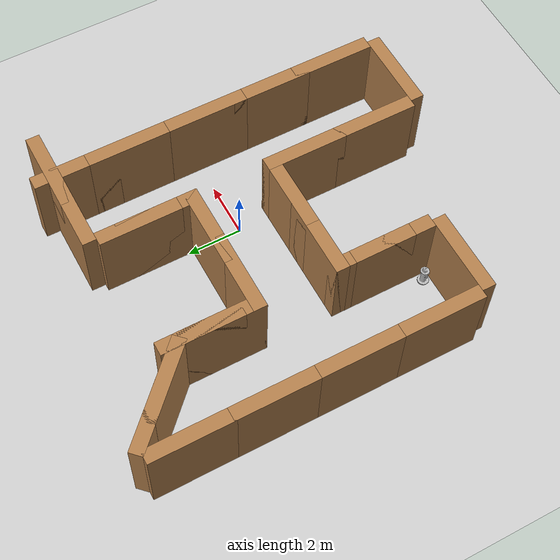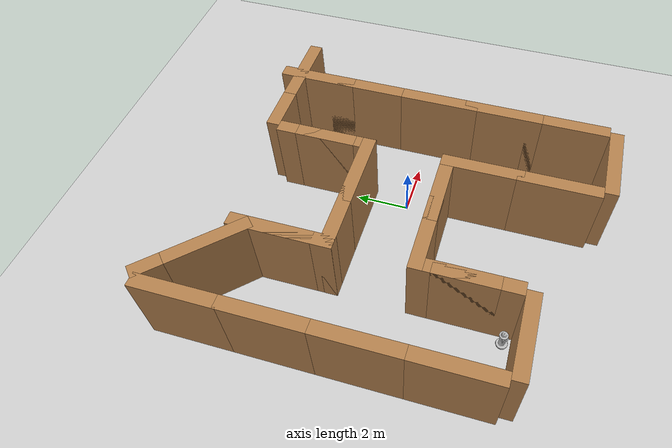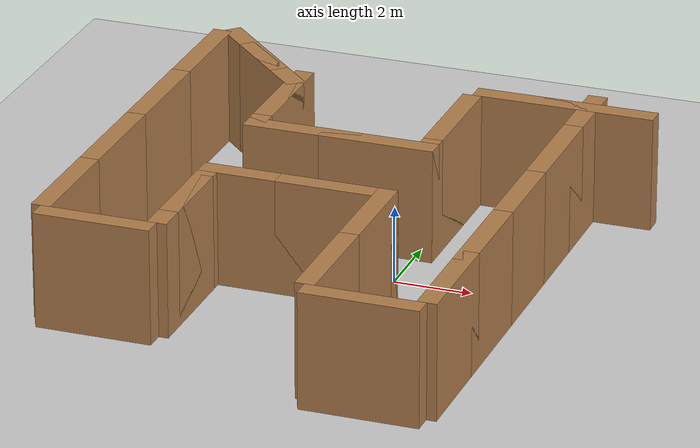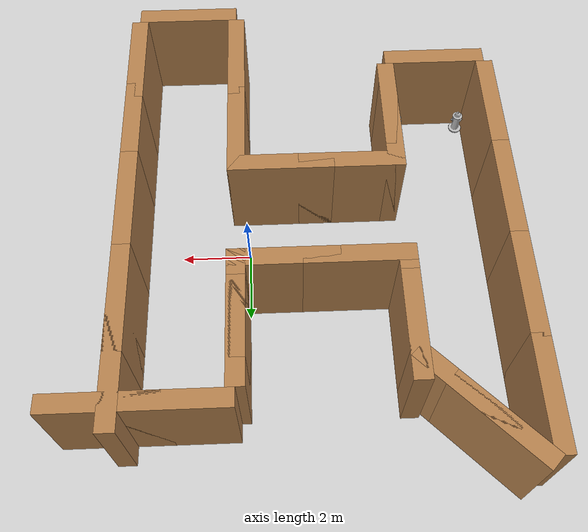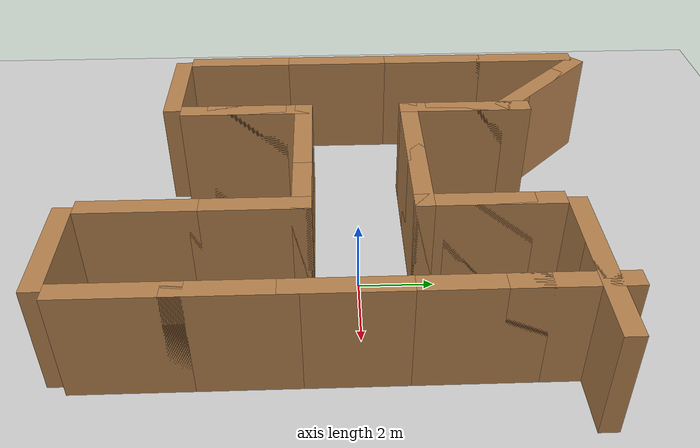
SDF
<sdf version="1.10">
 <world name="h_map_world">
  <physics name="4ms" type="ode">
   <max_step_size>0.004</max_step_size>
   <real_time_factor>1</real_time_factor>
   <real_time_update_rate>250</real_time_update_rate>
  </physics>
  <plugin name="gz::sim::systems::Physics" filename="gz-sim-physics-system"/>
  <plugin name="gz::sim::systems::UserCommands" filename="gz-sim-user-commands-system"/>
  <plugin name="gz::sim::systems::SceneBroadcaster" filename="gz-sim-scene-broadcaster-system"/>
  <plugin name="gz::sim::systems::Contact" filename="gz-sim-contact-system"/>
  <plugin filename="gz-sim-sensors-system" name="gz::sim::systems::Sensors">
   <render_engine>ogre2</render_engine>
  </plugin>
  <plugin filename="gz-sim-imu-system" name="gz::sim::systems::Imu"/>
  <plugin filename="gz-sim-navsat-system" name="gz::sim::systems::NavSat"/>
  <spherical_coordinates>
   <surface_model>EARTH_WGS84</surface_model>
   <world_frame_orientation>ENU</world_frame_orientation>
   <latitude_deg>47.478950</latitude_deg>
   <longitude_deg>19.057785</longitude_deg>
   <elevation>0</elevation>
   <heading_deg>0</heading_deg>
  </spherical_coordinates>
  <gravity>0 0 -9.8000000000000007</gravity>
  <magnetic_field>5.5644999999999998e-06 2.2875799999999999e-05 -4.2388400000000002e-05</magnetic_field>
  <atmosphere type="adiabatic"/>
  <scene>
   <ambient>0.400000006 0.400000006 0.400000006 1</ambient>
   <background>0.699999988 0.699999988 0.699999988 1</background>
   <shadows>true</shadows>
  </scene>
  <light name="sun" type="directional">
   <pose>0 0 10 0 0 0</pose>
   <intensity>1</intensity>
   <direction>-0.5 0.10000000000000001 -0.90000000000000002</direction>
   <diffuse>0.800000012 0.800000012 0.800000012 1</diffuse>
   <specular>0.200000003 0.200000003 0.200000003 1</specular>
   <attenuation>
    <range>1000</range>
    <linear>0.0099999997764825821</linear>
    <constant>0.89999997615814209</constant>
    <quadratic>0.0010000000474974513</quadratic>
   </attenuation>
   <spot><inner_angle>0</inner_angle><outer_angle>0</outer_angle><falloff>0</falloff></spot>
  </light>
  <model name="ground_plane">
   <static>true</static>
   <link name="link">
    <collision name="collision">
     <geometry><plane><normal>0 0 1</normal><size>100 100</size></plane></geometry>
     <surface><friction><ode><mu>50</mu></ode></friction></surface>
    </collision>
    <visual name="visual">
     <geometry><plane><normal>0 0 1</normal><size>100 100</size></plane></geometry>
     <material>
      <ambient>0.800000012 0.800000012 0.800000012 1</ambient>
      <diffuse>0.800000012 0.800000012 0.800000012 1</diffuse>
      <specular>0.800000012 0.800000012 0.800000012 1</specular>
     </material>
    </visual>
    <inertial>
     <mass>1</mass>
     <inertia><ixx>1</ixx><ixy>0</ixy><ixz>0</ixz><iyy>1</iyy><iyz>0</iyz><izz>1</izz></inertia>
    </inertial>
   </link>
  </model>
  <model name="left_west_0">
   <static>true</static>
   <link name="chassis">
    <pose>0 0 1.5 0 0 0</pose>
    <collision name="collision"><geometry><box><size>3 0.5 3</size></box></geometry></collision>
    <visual name="visual">
     <geometry>
      <mesh><uri>model://brick_box_3x1x3/meshes/simple_box.dae</uri><scale>3 0.5 3</scale></mesh>
     </geometry>
     <material>
      <diffuse>1 1 1 1</diffuse>
      <script><uri>file://media/materials/scripts/gazebo.material</uri><name>Gazebo/Wood</name></script>
      <pbr><metal><albedo_map>model://brick_box_3x1x3/materials/textures/simple_box.png</albedo_map></metal></pbr>
     </material>
    </visual>
   </link>
   <pose>-7.2500 -3.4000 0 0 0 -1.5707963268</pose>
  </model>
  <model name="left_west_1">
   <static>true</static>
   <link name="chassis">
    <pose>0 0 1.5 0 0 0</pose>
    <collision name="collision"><geometry><box><size>3 0.5 3</size></box></geometry></collision>
    <visual name="visual">
     <geometry>
      <mesh><uri>model://brick_box_3x1x3/meshes/simple_box.dae</uri><scale>3 0.5 3</scale></mesh>
     </geometry>
     <material>
      <diffuse>1 1 1 1</diffuse>
      <script><uri>file://media/materials/scripts/gazebo.material</uri><name>Gazebo/Wood</name></script>
      <pbr><metal><albedo_map>model://brick_box_3x1x3/materials/textures/simple_box.png</albedo_map></metal></pbr>
     </material>
    </visual>
   </link>
   <pose>-7.2500 -0.4000 0 0 0 -1.5707963268</pose>
  </model>
  <model name="left_west_2">
   <static>true</static>
   <link name="chassis">
    <pose>0 0 1.5 0 0 0</pose>
    <collision name="collision"><geometry><box><size>3 0.5 3</size></box></geometry></collision>
    <visual name="visual">
     <geometry>
      <mesh><uri>model://brick_box_3x1x3/meshes/simple_box.dae</uri><scale>3 0.5 3</scale></mesh>
     </geometry>
     <material>
      <diffuse>1 1 1 1</diffuse>
      <script><uri>file://media/materials/scripts/gazebo.material</uri><name>Gazebo/Wood</name></script>
      <pbr><metal><albedo_map>model://brick_box_3x1x3/materials/textures/simple_box.png</albedo_map></metal></pbr>
     </material>
    </visual>
   </link>
   <pose>-7.2500 2.6000 0 0 0 -1.5707963268</pose>
  </model>
  <model name="left_west_3">
   <static>true</static>
   <link name="chassis">
    <pose>0 0 1.5 0 0 0</pose>
    <collision name="collision"><geometry><box><size>3 0.5 3</size></box></geometry></collision>
    <visual name="visual">
     <geometry>
      <mesh><uri>model://brick_box_3x1x3/meshes/simple_box.dae</uri><scale>3 0.5 3</scale></mesh>
     </geometry>
     <material>
      <diffuse>1 1 1 1</diffuse>
      <script><uri>file://media/materials/scripts/gazebo.material</uri><name>Gazebo/Wood</name></script>
      <pbr><metal><albedo_map>model://brick_box_3x1x3/materials/textures/simple_box.png</albedo_map></metal></pbr>
     </material>
    </visual>
   </link>
   <pose>-7.2500 5.5000 0 0 0 -1.5707963268</pose>
  </model>
  <model name="left_north_0">
   <static>true</static>
   <link name="chassis">
    <pose>0 0 1.5 0 0 0</pose>
    <collision name="collision"><geometry><box><size>3 0.5 3</size></box></geometry></collision>
    <visual name="visual">
     <geometry>
      <mesh><uri>model://brick_box_3x1x3/meshes/simple_box.dae</uri><scale>3 0.5 3</scale></mesh>
     </geometry>
     <material>
      <diffuse>1 1 1 1</diffuse>
      <script><uri>file://media/materials/scripts/gazebo.material</uri><name>Gazebo/Wood</name></script>
      <pbr><metal><albedo_map>model://brick_box_3x1x3/materials/textures/simple_box.png</albedo_map></metal></pbr>
     </material>
    </visual>
   </link>
   <pose>-5.2500 5.3500 0 0 0 -0.785</pose>
  </model>
  <model name="left_north_1">
   <static>true</static>
   <link name="chassis">
    <pose>0 0 1.5 0 0 0</pose>
    <collision name="collision"><geometry><box><size>3 0.5 3</size></box></geometry></collision>
    <visual name="visual">
     <geometry>
      <mesh><uri>model://brick_box_3x1x3/meshes/simple_box.dae</uri><scale>3 0.5 3</scale></mesh>
     </geometry>
     <material>
      <diffuse>1 1 1 1</diffuse>
      <script><uri>file://media/materials/scripts/gazebo.material</uri><name>Gazebo/Wood</name></script>
      <pbr><metal><albedo_map>model://brick_box_3x1x3/materials/textures/simple_box.png</albedo_map></metal></pbr>
     </material>
    </visual>
   </link>
   <pose>-6.000 6.1000 0 0 0 -0.785</pose>
  </model>
  <model name="left_south_0">
   <static>true</static>
   <link name="chassis">
    <pose>0 0 1.5 0 0 0</pose>
    <collision name="collision"><geometry><box><size>3 0.5 3</size></box></geometry></collision>
    <visual name="visual">
     <geometry>
      <mesh><uri>model://brick_box_3x1x3/meshes/simple_box.dae</uri><scale>3 0.5 3</scale></mesh>
     </geometry>
     <material>
      <diffuse>1 1 1 1</diffuse>
      <script><uri>file://media/materials/scripts/gazebo.material</uri><name>Gazebo/Wood</name></script>
      <pbr><metal><albedo_map>model://brick_box_3x1x3/materials/textures/simple_box.png</albedo_map></metal></pbr>
     </material>
    </visual>
   </link>
   <pose>-5.7500 -5.1500 0 0 0 0.0000000000</pose>
  </model>
  <model name="right_north_0">
   <static>true</static>
   <link name="chassis">
    <pose>0 0 1.5 0 0 0</pose>
    <collision name="collision"><geometry><box><size>3 0.5 3</size></box></geometry></collision>
    <visual name="visual">
     <geometry>
      <mesh><uri>model://brick_box_3x1x3/meshes/simple_box.dae</uri><scale>3 0.5 3</scale></mesh>
     </geometry>
     <material>
      <diffuse>1 1 1 1</diffuse>
      <script><uri>file://media/materials/scripts/gazebo.material</uri><name>Gazebo/Wood</name></script>
      <pbr><metal><albedo_map>model://brick_box_3x1x3/materials/textures/simple_box.png</albedo_map></metal></pbr>
     </material>
    </visual>
   </link>
   <pose>1.7500 5.3500 0 0 0 0.0000000000</pose>
  </model>
  <model name="right_south_0">
   <static>true</static>
   <link name="chassis">
    <pose>0 0 1.5 0 0 0</pose>
    <collision name="collision"><geometry><box><size>3 0.5 3</size></box></geometry></collision>
    <visual name="visual">
     <geometry>
      <mesh><uri>model://brick_box_3x1x3/meshes/simple_box.dae</uri><scale>3 0.5 3</scale></mesh>
     </geometry>
     <material>
      <diffuse>1 1 1 1</diffuse>
      <script><uri>file://media/materials/scripts/gazebo.material</uri><name>Gazebo/Wood</name></script>
      <pbr><metal><albedo_map>model://brick_box_3x1x3/materials/textures/simple_box.png</albedo_map></metal></pbr>
     </material>
    </visual>
   </link>
   <pose>1.7500 -7.1500 0 0 0 0.0000000000</pose>
  </model>
  <model name="right_east_0">
   <static>true</static>
   <link name="chassis">
    <pose>0 0 1.5 0 0 0</pose>
    <collision name="collision"><geometry><box><size>3 0.5 3</size></box></geometry></collision>
    <visual name="visual">
     <geometry>
      <mesh><uri>model://brick_box_3x1x3/meshes/simple_box.dae</uri><scale>3 0.5 3</scale></mesh>
     </geometry>
     <material>
      <diffuse>1 1 1 1</diffuse>
      <script><uri>file://media/materials/scripts/gazebo.material</uri><name>Gazebo/Wood</name></script>
      <pbr><metal><albedo_map>model://brick_box_3x1x3/materials/textures/simple_box.png</albedo_map></metal></pbr>
     </material>
    </visual>
   </link>
   <pose>3.2500 -5.4000 0 0 0 -1.5707963268</pose>
  </model>
  <model name="right_east_1">
   <static>true</static>
   <link name="chassis">
    <pose>0 0 1.5 0 0 0</pose>
    <collision name="collision"><geometry><box><size>3 0.5 3</size></box></geometry></collision>
    <visual name="visual">
     <geometry>
      <mesh><uri>model://brick_box_3x1x3/meshes/simple_box.dae</uri><scale>3 0.5 3</scale></mesh>
     </geometry>
     <material>
      <diffuse>1 1 1 1</diffuse>
      <script><uri>file://media/materials/scripts/gazebo.material</uri><name>Gazebo/Wood</name></script>
      <pbr><metal><albedo_map>model://brick_box_3x1x3/materials/textures/simple_box.png</albedo_map></metal></pbr>
     </material>
    </visual>
   </link>
   <pose>3.2500 -0.4000 0 0 0 -1.5707963268</pose>
  </model>
  <model name="right_east_2">
   <static>true</static>
   <link name="chassis">
    <pose>0 0 1.5 0 0 0</pose>
    <collision name="collision"><geometry><box><size>3 0.5 3</size></box></geometry></collision>
    <visual name="visual">
     <geometry>
      <mesh><uri>model://brick_box_3x1x3/meshes/simple_box.dae</uri><scale>3 0.5 3</scale></mesh>
     </geometry>
     <material>
      <diffuse>1 1 1 1</diffuse>
      <script><uri>file://media/materials/scripts/gazebo.material</uri><name>Gazebo/Wood</name></script>
      <pbr><metal><albedo_map>model://brick_box_3x1x3/materials/textures/simple_box.png</albedo_map></metal></pbr>
     </material>
    </visual>
   </link>
   <pose>3.2500 2.6000 0 0 0 -1.5707963268</pose>
  </model>
  <model name="right_east_3">
   <static>true</static>
   <link name="chassis">
    <pose>0 0 1.5 0 0 0</pose>
    <collision name="collision"><geometry><box><size>3 0.5 3</size></box></geometry></collision>
    <visual name="visual">
     <geometry>
      <mesh><uri>model://brick_box_3x1x3/meshes/simple_box.dae</uri><scale>3 0.5 3</scale></mesh>
     </geometry>
     <material>
      <diffuse>1 1 1 1</diffuse>
      <script><uri>file://media/materials/scripts/gazebo.material</uri><name>Gazebo/Wood</name></script>
      <pbr><metal><albedo_map>model://brick_box_3x1x3/materials/textures/simple_box.png</albedo_map></metal></pbr>
     </material>
    </visual>
   </link>
   <pose>3.2500 -2.9000 0 0 0 -1.5707963268</pose>
  </model>
  <model name="pocket_north_0">
   <static>true</static>
   <link name="chassis">
    <pose>0 0 1.5 0 0 0</pose>
    <collision name="collision"><geometry><box><size>3 0.5 3</size></box></geometry></collision>
    <visual name="visual">
     <geometry>
      <mesh><uri>model://brick_box_3x1x3/meshes/simple_box.dae</uri><scale>3 0.5 3</scale></mesh>
     </geometry>
     <material>
      <diffuse>1 1 1 1</diffuse>
      <script><uri>file://media/materials/scripts/gazebo.material</uri><name>Gazebo/Wood</name></script>
      <pbr><metal><albedo_map>model://brick_box_3x1x3/materials/textures/simple_box.png</albedo_map></metal></pbr>
     </material>
    </visual>
   </link>
   <pose>3.5000 5.3500 0 0 0 0.0000000000</pose>
  </model>
  <model name="pocket_east_0">
   <static>true</static>
   <link name="chassis">
    <pose>0 0 1.5 0 0 0</pose>
    <collision name="collision"><geometry><box><size>3 0.5 3</size></box></geometry></collision>
    <visual name="visual">
     <geometry>
      <mesh><uri>model://brick_box_3x1x3/meshes/simple_box.dae</uri><scale>3 0.5 3</scale></mesh>
     </geometry>
     <material>
      <diffuse>1 1 1 1</diffuse>
      <script><uri>file://media/materials/scripts/gazebo.material</uri><name>Gazebo/Wood</name></script>
      <pbr><metal><albedo_map>model://brick_box_3x1x3/materials/textures/simple_box.png</albedo_map></metal></pbr>
     </material>
    </visual>
   </link>
   <pose>3.2500 4.6000 0 0 0 -1.5707963268</pose>
  </model>
  <model name="left_east_upper_0">
   <static>true</static>
   <link name="chassis">
    <pose>0 0 1.5 0 0 0</pose>
    <collision name="collision"><geometry><box><size>3 0.5 3</size></box></geometry></collision>
    <visual name="visual">
     <geometry>
      <mesh><uri>model://brick_box_3x1x3/meshes/simple_box.dae</uri><scale>3 0.5 3</scale></mesh>
     </geometry>
     <material>
      <diffuse>1 1 1 1</diffuse>
      <script><uri>file://media/materials/scripts/gazebo.material</uri><name>Gazebo/Wood</name></script>
      <pbr><metal><albedo_map>model://brick_box_3x1x3/materials/textures/simple_box.png</albedo_map></metal></pbr>
     </material>
    </visual>
   </link>
   <pose>-4.2500 2.8500 0 0 0 -1.5707963268</pose>
  </model>
  <model name="left_east_upper_1">
   <static>true</static>
   <link name="chassis">
    <pose>0 0 1.5 0 0 0</pose>
    <collision name="collision"><geometry><box><size>3 0.5 3</size></box></geometry></collision>
    <visual name="visual">
     <geometry>
      <mesh><uri>model://brick_box_3x1x3/meshes/simple_box.dae</uri><scale>3 0.5 3</scale></mesh>
     </geometry>
     <material>
      <diffuse>1 1 1 1</diffuse>
      <script><uri>file://media/materials/scripts/gazebo.material</uri><name>Gazebo/Wood</name></script>
      <pbr><metal><albedo_map>model://brick_box_3x1x3/materials/textures/simple_box.png</albedo_map></metal></pbr>
     </material>
    </visual>
   </link>
   <pose>-4.2500 3.6000 0 0 0 -1.5707963268</pose>
  </model>
  <model name="left_east_lower_0">
   <static>true</static>
   <link name="chassis">
    <pose>0 0 1.5 0 0 0</pose>
    <collision name="collision"><geometry><box><size>3 0.5 3</size></box></geometry></collision>
    <visual name="visual">
     <geometry>
      <mesh><uri>model://brick_box_3x1x3/meshes/simple_box.dae</uri><scale>3 0.5 3</scale></mesh>
     </geometry>
     <material>
      <diffuse>1 1 1 1</diffuse>
      <script><uri>file://media/materials/scripts/gazebo.material</uri><name>Gazebo/Wood</name></script>
      <pbr><metal><albedo_map>model://brick_box_3x1x3/materials/textures/simple_box.png</albedo_map></metal></pbr>
     </material>
    </visual>
   </link>
   <pose>-4.2500 -3.4000 0 0 0 -1.5707963268</pose>
  </model>
  <model name="left_east_lower_1">
   <static>true</static>
   <link name="chassis">
    <pose>0 0 1.5 0 0 0</pose>
    <collision name="collision"><geometry><box><size>3 0.5 3</size></box></geometry></collision>
    <visual name="visual">
     <geometry>
      <mesh><uri>model://brick_box_3x1x3/meshes/simple_box.dae</uri><scale>3 0.5 3</scale></mesh>
     </geometry>
     <material>
      <diffuse>1 1 1 1</diffuse>
      <script><uri>file://media/materials/scripts/gazebo.material</uri><name>Gazebo/Wood</name></script>
      <pbr><metal><albedo_map>model://brick_box_3x1x3/materials/textures/simple_box.png</albedo_map></metal></pbr>
     </material>
    </visual>
   </link>
   <pose>-4.2500 -2.6500 0 0 0 -1.5707963268</pose>
  </model>
  <model name="bridge_north_0">
   <static>true</static>
   <link name="chassis">
    <pose>0 0 1.5 0 0 0</pose>
    <collision name="collision"><geometry><box><size>3 0.5 3</size></box></geometry></collision>
    <visual name="visual">
     <geometry>
      <mesh><uri>model://brick_box_3x1x3/meshes/simple_box.dae</uri><scale>3 0.5 3</scale></mesh>
     </geometry>
     <material>
      <diffuse>1 1 1 1</diffuse>
      <script><uri>file://media/materials/scripts/gazebo.material</uri><name>Gazebo/Wood</name></script>
      <pbr><metal><albedo_map>model://brick_box_3x1x3/materials/textures/simple_box.png</albedo_map></metal></pbr>
     </material>
    </visual>
   </link>
   <pose>-3.0000 1.6000 0 0 0 0.0000000000</pose>
  </model>
  <model name="bridge_north_1">
   <static>true</static>
   <link name="chassis">
    <pose>0 0 1.5 0 0 0</pose>
    <collision name="collision"><geometry><box><size>3 0.5 3</size></box></geometry></collision>
    <visual name="visual">
     <geometry>
      <mesh><uri>model://brick_box_3x1x3/meshes/simple_box.dae</uri><scale>3 0.5 3</scale></mesh>
     </geometry>
     <material>
      <diffuse>1 1 1 1</diffuse>
      <script><uri>file://media/materials/scripts/gazebo.material</uri><name>Gazebo/Wood</name></script>
      <pbr><metal><albedo_map>model://brick_box_3x1x3/materials/textures/simple_box.png</albedo_map></metal></pbr>
     </material>
    </visual>
   </link>
   <pose>-1.0000 1.6000 0 0 0 0.0000000000</pose>
  </model>
  <model name="bridge_south_0">
   <static>true</static>
   <link name="chassis">
    <pose>0 0 1.5 0 0 0</pose>
    <collision name="collision"><geometry><box><size>3 0.5 3</size></box></geometry></collision>
    <visual name="visual">
     <geometry>
      <mesh><uri>model://brick_box_3x1x3/meshes/simple_box.dae</uri><scale>3 0.5 3</scale></mesh>
     </geometry>
     <material>
      <diffuse>1 1 1 1</diffuse>
      <script><uri>file://media/materials/scripts/gazebo.material</uri><name>Gazebo/Wood</name></script>
      <pbr><metal><albedo_map>model://brick_box_3x1x3/materials/textures/simple_box.png</albedo_map></metal></pbr>
     </material>
    </visual>
   </link>
   <pose>-3.0000 -1.4000 0 0 0 0.0000000000</pose>
  </model>
  <model name="bridge_south_1">
   <static>true</static>
   <link name="chassis">
    <pose>0 0 1.5 0 0 0</pose>
    <collision name="collision"><geometry><box><size>3 0.5 3</size></box></geometry></collision>
    <visual name="visual">
     <geometry>
      <mesh><uri>model://brick_box_3x1x3/meshes/simple_box.dae</uri><scale>3 0.5 3</scale></mesh>
     </geometry>
     <material>
      <diffuse>1 1 1 1</diffuse>
      <script><uri>file://media/materials/scripts/gazebo.material</uri><name>Gazebo/Wood</name></script>
      <pbr><metal><albedo_map>model://brick_box_3x1x3/materials/textures/simple_box.png</albedo_map></metal></pbr>
     </material>
    </visual>
   </link>
   <pose>-1.0000 -1.4000 0 0 0 0.0000000000</pose>
  </model>
  <model name="right_west_upper_0">
   <static>true</static>
   <link name="chassis">
    <pose>0 0 1.5 0 0 0</pose>
    <collision name="collision"><geometry><box><size>3 0.5 3</size></box></geometry></collision>
    <visual name="visual">
     <geometry>
      <mesh><uri>model://brick_box_3x1x3/meshes/simple_box.dae</uri><scale>3 0.5 3</scale></mesh>
     </geometry>
     <material>
      <diffuse>1 1 1 1</diffuse>
      <script><uri>file://media/materials/scripts/gazebo.material</uri><name>Gazebo/Wood</name></script>
      <pbr><metal><albedo_map>model://brick_box_3x1x3/materials/textures/simple_box.png</albedo_map></metal></pbr>
     </material>
    </visual>
   </link>
   <pose>0.2500 2.8500 0 0 0 -1.5707963268</pose>
  </model>
  <model name="right_west_upper_1">
   <static>true</static>
   <link name="chassis">
    <pose>0 0 1.5 0 0 0</pose>
    <collision name="collision"><geometry><box><size>3 0.5 3</size></box></geometry></collision>
    <visual name="visual">
     <geometry>
      <mesh><uri>model://brick_box_3x1x3/meshes/simple_box.dae</uri><scale>3 0.5 3</scale></mesh>
     </geometry>
     <material>
      <diffuse>1 1 1 1</diffuse>
      <script><uri>file://media/materials/scripts/gazebo.material</uri><name>Gazebo/Wood</name></script>
      <pbr><metal><albedo_map>model://brick_box_3x1x3/materials/textures/simple_box.png</albedo_map></metal></pbr>
     </material>
    </visual>
   </link>
   <pose>0.2500 3.6000 0 0 0 -1.5707963268</pose>
  </model>
  <model name="right_west_lower_0">
   <static>true</static>
   <link name="chassis">
    <pose>0 0 1.5 0 0 0</pose>
    <collision name="collision"><geometry><box><size>3 0.5 3</size></box></geometry></collision>
    <visual name="visual">
     <geometry>
      <mesh><uri>model://brick_box_3x1x3/meshes/simple_box.dae</uri><scale>3 0.5 3</scale></mesh>
     </geometry>
     <material>
      <diffuse>1 1 1 1</diffuse>
      <script><uri>file://media/materials/scripts/gazebo.material</uri><name>Gazebo/Wood</name></script>
      <pbr><metal><albedo_map>model://brick_box_3x1x3/materials/textures/simple_box.png</albedo_map></metal></pbr>
     </material>
    </visual>
   </link>
   <pose>0.2500 -5.4000 0 0 0 -1.5707963268</pose>
  </model>
  <model name="right_west_lower_1">
   <static>true</static>
   <link name="chassis">
    <pose>0 0 1.5 0 0 0</pose>
    <collision name="collision"><geometry><box><size>3 0.5 3</size></box></geometry></collision>
    <visual name="visual">
     <geometry>
      <mesh><uri>model://brick_box_3x1x3/meshes/simple_box.dae</uri><scale>3 0.5 3</scale></mesh>
     </geometry>
     <material>
      <diffuse>1 1 1 1</diffuse>
      <script><uri>file://media/materials/scripts/gazebo.material</uri><name>Gazebo/Wood</name></script>
      <pbr><metal><albedo_map>model://brick_box_3x1x3/materials/textures/simple_box.png</albedo_map></metal></pbr>
     </material>
    </visual>
   </link>
   <pose>0.2500 -2.6500 0 0 0 -1.5707963268</pose>
  </model>
  <model name="fire_hydrant_1">
   <static>true</static>
   <link name="link">
    <collision name="collision">
     <geometry><mesh><uri>model://fire_hydrant/meshes/fire_hydrant.dae</uri></mesh></geometry>
    </collision>
    <visual name="visual">
     <geometry><mesh><uri>model://fire_hydrant/meshes/fire_hydrant.dae</uri></mesh></geometry>
    </visual>
    <inertial>
     <mass>1</mass>
     <inertia><ixx>1</ixx><ixy>0</ixy><ixz>0</ixz><iyy>1</iyy><iyz>0</iyz><izz>1</izz></inertia>
    </inertial>
   </link>
   <pose>-4.8000 -4.6000 0 0 0 0</pose>
  </model>
  <model name="fire_hydrant_2">
   <static>true</static>
   <link name="link">
    <collision name="collision">
     <geometry><mesh><uri>model://fire_hydrant/meshes/fire_hydrant.dae</uri></mesh></geometry>
    </collision>
    <visual name="visual">
     <geometry><mesh><uri>model://fire_hydrant/meshes/fire_hydrant.dae</uri></mesh></geometry>
    </visual>
    <inertial>
     <mass>1</mass>
     <inertia><ixx>1</ixx><ixy>0</ixy><ixz>0</ixz><iyy>1</iyy><iyz>0</iyz><izz>1</izz></inertia>
    </inertial>
   </link>
   <pose>-6.8000 -4.6000 0 0 0 0</pose>
  </model>
 </world>
</sdf>
